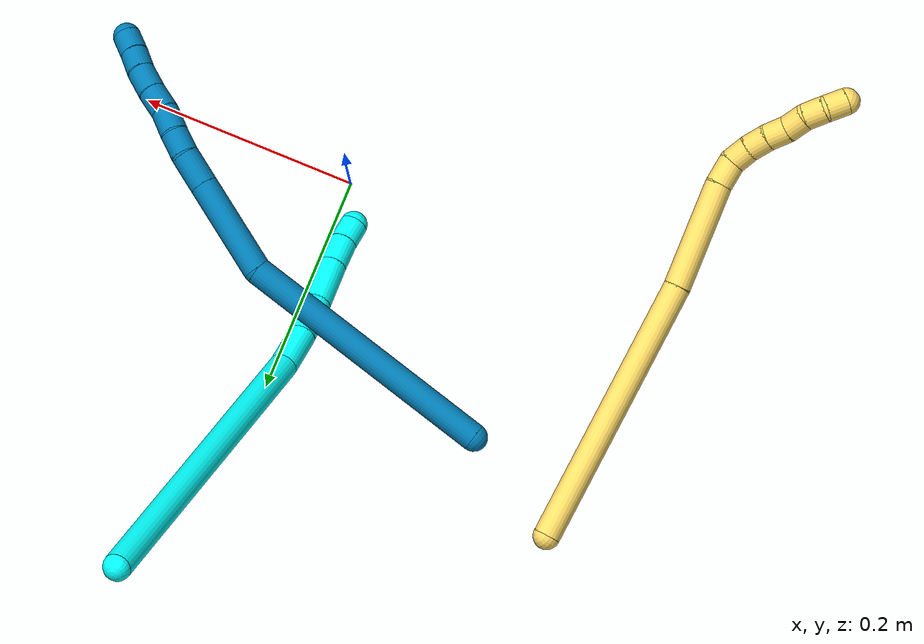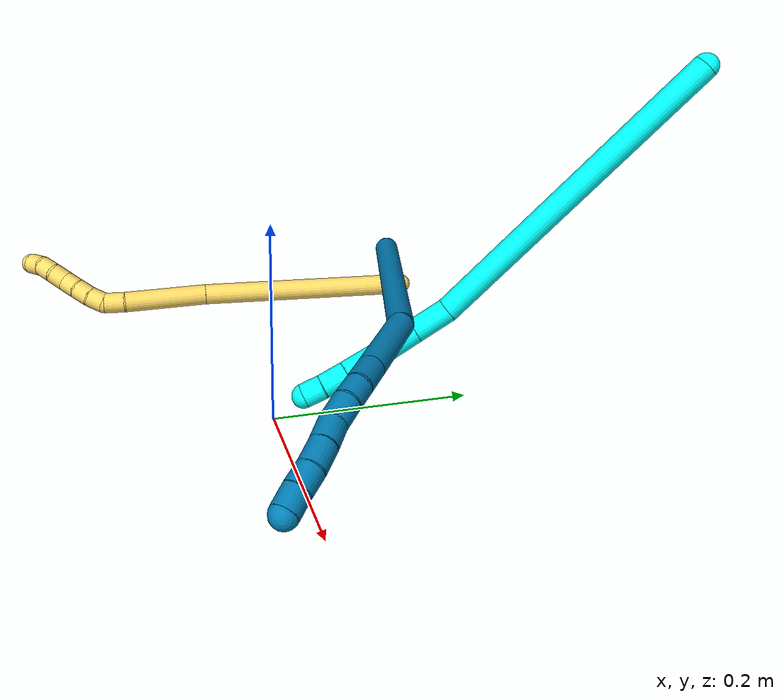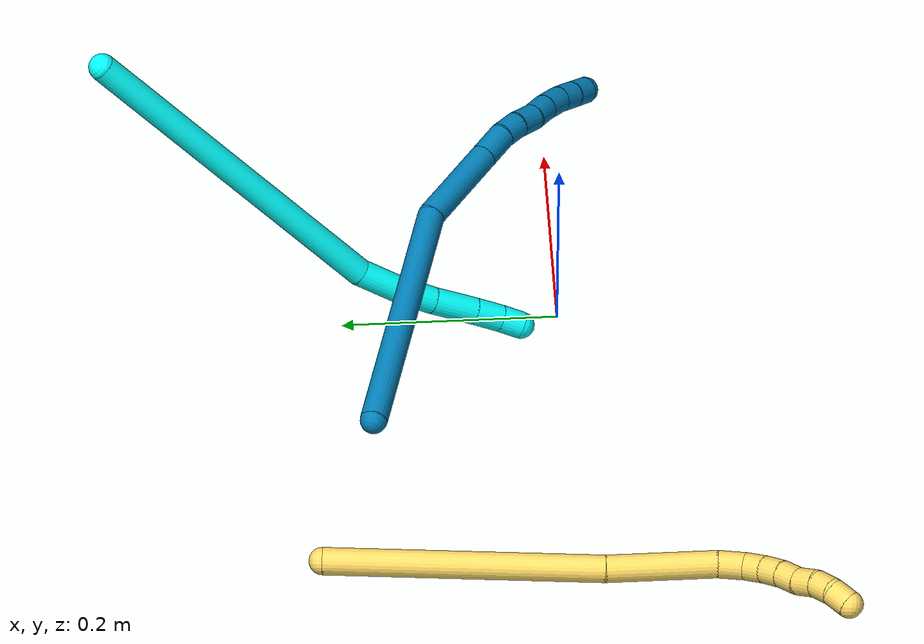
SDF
<sdf version="1.7">
 <world name="default">
  <model name="3">
   <static>0</static>
   <link name="3">
    <collision name="collision-cylinder-e_1_1_4">
     <pose>-0.015976 0.021845 -0.163456 -3.00874 -0.096577 1.25649</pose>
     <geometry><cylinder><radius>0.0125</radius><length>0.331363</length></cylinder></geometry>
     <surface>
      <friction><ode><mu>1.16</mu><mu2>1.16</mu2><slip1>0</slip1><slip2>0</slip2></ode></friction>
      <contact><ode><kp>1e+06</kp><kd>1</kd><max_vel>0</max_vel><min_depth>0.001</min_depth></ode></contact>
     </surface>
    </collision>
    <visual name="visual-cylinder-e_1_1_4">
     <pose>-0.015976 0.021845 -0.163456 -3.00874 -0.096577 1.25649</pose>
     <geometry><cylinder><radius>0.0125</radius><length>0.331363</length></cylinder></geometry>
     <material><ambient>0.003922 1 0.996078 1</ambient></material>
    </visual>
    <collision name="collision-cylinder-e_2_4_5">
     <pose>-0.03573 0.041553 -0.346114 3.0308 -0.19308 -2.10149</pose>
     <geometry><cylinder><radius>0.0125</radius><length>0.039371</length></cylinder></geometry>
     <surface>
      <friction><ode><mu>1.16</mu><mu2>1.16</mu2><slip1>0</slip1><slip2>0</slip2></ode></friction>
      <contact><ode><kp>1e+06</kp><kd>1</kd><max_vel>0</max_vel><min_depth>0.001</min_depth></ode></contact>
     </surface>
    </collision>
    <visual name="visual-cylinder-e_2_4_5">
     <pose>-0.03573 0.041553 -0.346114 3.0308 -0.19308 -2.10149</pose>
     <geometry><cylinder><radius>0.0125</radius><length>0.039371</length></cylinder></geometry>
     <material><ambient>0.003922 1 0.996078 1</ambient></material>
    </visual>
    <collision name="collision-cylinder-e_3_5_6">
     <pose>-0.042375 0.035802 -0.384014 2.9506 -0.149483 -1.32702</pose>
     <geometry><cylinder><radius>0.0125</radius><length>0.03852</length></cylinder></geometry>
     <surface>
      <friction><ode><mu>1.16</mu><mu2>1.16</mu2><slip1>0</slip1><slip2>0</slip2></ode></friction>
      <contact><ode><kp>1e+06</kp><kd>1</kd><max_vel>0</max_vel><min_depth>0.001</min_depth></ode></contact>
     </surface>
    </collision>
    <visual name="visual-cylinder-e_3_5_6">
     <pose>-0.042375 0.035802 -0.384014 2.9506 -0.149483 -1.32702</pose>
     <geometry><cylinder><radius>0.0125</radius><length>0.03852</length></cylinder></geometry>
     <material><ambient>0.003922 1 0.996078 1</ambient></material>
    </visual>
    <collision name="collision-cylinder-e_4_6_7">
     <pose>-0.048609 0.02668 -0.422986 2.87639 -0.158851 -1.07601</pose>
     <geometry><cylinder><radius>0.0125</radius><length>0.04255</length></cylinder></geometry>
     <surface>
      <friction><ode><mu>1.16</mu><mu2>1.16</mu2><slip1>0</slip1><slip2>0</slip2></ode></friction>
      <contact><ode><kp>1e+06</kp><kd>1</kd><max_vel>0</max_vel><min_depth>0.001</min_depth></ode></contact>
     </surface>
    </collision>
    <visual name="visual-cylinder-e_4_6_7">
     <pose>-0.048609 0.02668 -0.422986 2.87639 -0.158851 -1.07601</pose>
     <geometry><cylinder><radius>0.0125</radius><length>0.04255</length></cylinder></geometry>
     <material><ambient>0.003922 1 0.996078 1</ambient></material>
    </visual>
    <collision name="collision-cylinder-e_5_7_8">
     <pose>-0.054462 0.017961 -0.456064 2.89577 -0.186251 -1.29469</pose>
     <geometry><cylinder><radius>0.0125</radius><length>0.02687</length></cylinder></geometry>
     <surface>
      <friction><ode><mu>1.16</mu><mu2>1.16</mu2><slip1>0</slip1><slip2>0</slip2></ode></friction>
      <contact><ode><kp>1e+06</kp><kd>1</kd><max_vel>0</max_vel><min_depth>0.001</min_depth></ode></contact>
     </surface>
    </collision>
    <visual name="visual-cylinder-e_5_7_8">
     <pose>-0.054462 0.017961 -0.456064 2.89577 -0.186251 -1.29469</pose>
     <geometry><cylinder><radius>0.0125</radius><length>0.02687</length></cylinder></geometry>
     <material><ambient>0.003922 1 0.996078 1</ambient></material>
    </visual>
    <collision name="collision-cylinder-e_6_8_2">
     <pose>-0.059944 0.01252 -0.478858 2.92207 -0.284609 -1.83028</pose>
     <geometry><cylinder><radius>0.0125</radius><length>0.021326</length></cylinder></geometry>
     <surface>
      <friction><ode><mu>1.16</mu><mu2>1.16</mu2><slip1>0</slip1><slip2>0</slip2></ode></friction>
      <contact><ode><kp>1e+06</kp><kd>1</kd><max_vel>0</max_vel><min_depth>0.001</min_depth></ode></contact>
     </surface>
    </collision>
    <visual name="visual-cylinder-e_6_8_2">
     <pose>-0.059944 0.01252 -0.478858 2.92207 -0.284609 -1.83028</pose>
     <geometry><cylinder><radius>0.0125</radius><length>0.021326</length></cylinder></geometry>
     <material><ambient>0.003922 1 0.996078 1</ambient></material>
    </visual>
    <collision name="collision-sphere-2">
     <pose>-0.062938 0.010291 -0.488847 0 -0 0</pose>
     <geometry><sphere><radius>0.0125</radius></sphere></geometry>
     <surface>
      <friction><ode><mu>1.16</mu><mu2>1.16</mu2><slip1>0</slip1><slip2>0</slip2></ode></friction>
      <contact><ode><kp>1e+06</kp><kd>1</kd><max_vel>0</max_vel><min_depth>0.001</min_depth></ode></contact>
     </surface>
    </collision>
    <visual name="visual-sphere-2">
     <pose>-0.062938 0.010291 -0.488847 0 -0 0</pose>
     <geometry><sphere><radius>0.0125</radius></sphere></geometry>
     <material><ambient>0.003922 1 0.996078 1</ambient></material>
    </visual>
    <collision name="collision-sphere-4">
     <pose>-0.031952 0.043689 -0.326913 0 -0 0</pose>
     <geometry><sphere><radius>0.0125</radius></sphere></geometry>
     <surface>
      <friction><ode><mu>1.16</mu><mu2>1.16</mu2><slip1>0</slip1><slip2>0</slip2></ode></friction>
      <contact><ode><kp>1e+06</kp><kd>1</kd><max_vel>0</max_vel><min_depth>0.001</min_depth></ode></contact>
     </surface>
    </collision>
    <visual name="visual-sphere-4">
     <pose>-0.031952 0.043689 -0.326913 0 -0 0</pose>
     <geometry><sphere><radius>0.0125</radius></sphere></geometry>
     <material><ambient>0.003922 1 0.996078 1</ambient></material>
    </visual>
    <collision name="collision-sphere-1">
     <geometry><sphere><radius>0.0125</radius></sphere></geometry>
     <surface>
      <friction><ode><mu>1.16</mu><mu2>1.16</mu2><slip1>0</slip1><slip2>0</slip2></ode></friction>
      <contact><ode><kp>1e+06</kp><kd>1</kd><max_vel>0</max_vel><min_depth>0.001</min_depth></ode></contact>
     </surface>
    </collision>
    <visual name="visual-sphere-1">
     <geometry><sphere><radius>0.0125</radius></sphere></geometry>
     <material><ambient>0.003922 1 0.996078 1</ambient></material>
    </visual>
    <collision name="collision-sphere-8">
     <pose>-0.05695 0.014748 -0.46887 0 -0 0</pose>
     <geometry><sphere><radius>0.0125</radius></sphere></geometry>
     <surface>
      <friction><ode><mu>1.16</mu><mu2>1.16</mu2><slip1>0</slip1><slip2>0</slip2></ode></friction>
      <contact><ode><kp>1e+06</kp><kd>1</kd><max_vel>0</max_vel><min_depth>0.001</min_depth></ode></contact>
     </surface>
    </collision>
    <visual name="visual-sphere-8">
     <pose>-0.05695 0.014748 -0.46887 0 -0 0</pose>
     <geometry><sphere><radius>0.0125</radius></sphere></geometry>
     <material><ambient>0.003922 1 0.996078 1</ambient></material>
    </visual>
    <collision name="collision-sphere-5">
     <pose>-0.039507 0.039417 -0.365316 0 -0 0</pose>
     <geometry><sphere><radius>0.0125</radius></sphere></geometry>
     <surface>
      <friction><ode><mu>1.16</mu><mu2>1.16</mu2><slip1>0</slip1><slip2>0</slip2></ode></friction>
      <contact><ode><kp>1e+06</kp><kd>1</kd><max_vel>0</max_vel><min_depth>0.001</min_depth></ode></contact>
     </surface>
    </collision>
    <visual name="visual-sphere-5">
     <pose>-0.039507 0.039417 -0.365316 0 -0 0</pose>
     <geometry><sphere><radius>0.0125</radius></sphere></geometry>
     <material><ambient>0.003922 1 0.996078 1</ambient></material>
    </visual>
    <collision name="collision-sphere-6">
     <pose>-0.045244 0.032186 -0.402713 0 -0 0</pose>
     <geometry><sphere><radius>0.0125</radius></sphere></geometry>
     <surface>
      <friction><ode><mu>1.16</mu><mu2>1.16</mu2><slip1>0</slip1><slip2>0</slip2></ode></friction>
      <contact><ode><kp>1e+06</kp><kd>1</kd><max_vel>0</max_vel><min_depth>0.001</min_depth></ode></contact>
     </surface>
    </collision>
    <visual name="visual-sphere-6">
     <pose>-0.045244 0.032186 -0.402713 0 -0 0</pose>
     <geometry><sphere><radius>0.0125</radius></sphere></geometry>
     <material><ambient>0.003922 1 0.996078 1</ambient></material>
    </visual>
    <collision name="collision-sphere-7">
     <pose>-0.051974 0.021174 -0.443259 0 -0 0</pose>
     <geometry><sphere><radius>0.0125</radius></sphere></geometry>
     <surface>
      <friction><ode><mu>1.16</mu><mu2>1.16</mu2><slip1>0</slip1><slip2>0</slip2></ode></friction>
      <contact><ode><kp>1e+06</kp><kd>1</kd><max_vel>0</max_vel><min_depth>0.001</min_depth></ode></contact>
     </surface>
    </collision>
    <visual name="visual-sphere-7">
     <pose>-0.051974 0.021174 -0.443259 0 -0 0</pose>
     <geometry><sphere><radius>0.0125</radius></sphere></geometry>
     <material><ambient>0.003922 1 0.996078 1</ambient></material>
    </visual>
    <inertial>
     <pose>-0.026286 0.024277 -0.246094 0 -0 0</pose>
     <mass>0.5</mass>
     <inertia>
      <ixx>0.003794</ixx>
      <ixy>0</ixy>
      <ixz>0</ixz>
      <iyy>0.001963</iyy>
      <iyz>0</iyz>
      <izz>-0.000137</izz>
     </inertia>
    </inertial>
   </link>
   <pose>0.03044 0.406805 0.331287 -0.714531 0.409791 0.457594</pose>
  </model>
  <model name="5">
   <static>0</static>
   <link name="5">
    <collision name="collision-cylinder-e_1_1_4">
     <pose>0.056004 -0.114027 0.000371 1.56754 0.456536 0.455102</pose>
     <geometry><cylinder><radius>0.0125</radius><length>0.254076</length></cylinder></geometry>
     <surface>
      <friction><ode><mu>1.16</mu><mu2>1.16</mu2><slip1>0</slip1><slip2>0</slip2></ode></friction>
      <contact><ode><kp>1e+06</kp><kd>1</kd><max_vel>0</max_vel><min_depth>0.001</min_depth></ode></contact>
     </surface>
    </collision>
    <visual name="visual-cylinder-e_1_1_4">
     <pose>0.056004 -0.114027 0.000371 1.56754 0.456536 0.455102</pose>
     <geometry><cylinder><radius>0.0125</radius><length>0.254076</length></cylinder></geometry>
     <material><ambient>1 0.858824 0.4 1</ambient></material>
    </visual>
    <collision name="collision-cylinder-e_2_4_5">
     <pose>0.1368 -0.271661 0.004647 1.4815 0.51525 0.472872</pose>
     <geometry><cylinder><radius>0.0125</radius><length>0.10063</length></cylinder></geometry>
     <surface>
      <friction><ode><mu>1.16</mu><mu2>1.16</mu2><slip1>0</slip1><slip2>0</slip2></ode></friction>
      <contact><ode><kp>1e+06</kp><kd>1</kd><max_vel>0</max_vel><min_depth>0.001</min_depth></ode></contact>
     </surface>
    </collision>
    <visual name="visual-cylinder-e_2_4_5">
     <pose>0.1368 -0.271661 0.004647 1.4815 0.51525 0.472872</pose>
     <geometry><cylinder><radius>0.0125</radius><length>0.10063</length></cylinder></geometry>
     <material><ambient>1 0.858824 0.4 1</ambient></material>
    </visual>
    <collision name="collision-cylinder-e_3_5_6">
     <pose>0.166885 -0.326512 0.007951 1.62414 0.439433 0.462693</pose>
     <geometry><cylinder><radius>0.0125</radius><length>0.024881</length></cylinder></geometry>
     <surface>
      <friction><ode><mu>1.16</mu><mu2>1.16</mu2><slip1>0</slip1><slip2>0</slip2></ode></friction>
      <contact><ode><kp>1e+06</kp><kd>1</kd><max_vel>0</max_vel><min_depth>0.001</min_depth></ode></contact>
     </surface>
    </collision>
    <visual name="visual-cylinder-e_3_5_6">
     <pose>0.166885 -0.326512 0.007951 1.62414 0.439433 0.462693</pose>
     <geometry><cylinder><radius>0.0125</radius><length>0.024881</length></cylinder></geometry>
     <material><ambient>1 0.858824 0.4 1</ambient></material>
    </visual>
    <collision name="collision-cylinder-e_4_6_7">
     <pose>0.171589 -0.347737 0.005772 1.7277 -0.058162 -0.06808</pose>
     <geometry><cylinder><radius>0.0125</radius><length>0.020248</length></cylinder></geometry>
     <surface>
      <friction><ode><mu>1.16</mu><mu2>1.16</mu2><slip1>0</slip1><slip2>0</slip2></ode></friction>
      <contact><ode><kp>1e+06</kp><kd>1</kd><max_vel>0</max_vel><min_depth>0.001</min_depth></ode></contact>
     </surface>
    </collision>
    <visual name="visual-cylinder-e_4_6_7">
     <pose>0.171589 -0.347737 0.005772 1.7277 -0.058162 -0.06808</pose>
     <geometry><cylinder><radius>0.0125</radius><length>0.020248</length></cylinder></geometry>
     <material><ambient>1 0.858824 0.4 1</ambient></material>
    </visual>
    <collision name="collision-cylinder-e_5_7_8">
     <pose>0.169094 -0.367319 0.001956 1.79972 -0.191039 -0.240241</pose>
     <geometry><cylinder><radius>0.0125</radius><length>0.020079</length></cylinder></geometry>
     <surface>
      <friction><ode><mu>1.16</mu><mu2>1.16</mu2><slip1>0</slip1><slip2>0</slip2></ode></friction>
      <contact><ode><kp>1e+06</kp><kd>1</kd><max_vel>0</max_vel><min_depth>0.001</min_depth></ode></contact>
     </surface>
    </collision>
    <visual name="visual-cylinder-e_5_7_8">
     <pose>0.169094 -0.367319 0.001956 1.79972 -0.191039 -0.240241</pose>
     <geometry><cylinder><radius>0.0125</radius><length>0.020079</length></cylinder></geometry>
     <material><ambient>1 0.858824 0.4 1</ambient></material>
    </visual>
    <collision name="collision-cylinder-e_6_8_9">
     <pose>0.165018 -0.386049 -0.003809 1.93955 -0.218178 -0.316804</pose>
     <geometry><cylinder><radius>0.0125</radius><length>0.020052</length></cylinder></geometry>
     <surface>
      <friction><ode><mu>1.16</mu><mu2>1.16</mu2><slip1>0</slip1><slip2>0</slip2></ode></friction>
      <contact><ode><kp>1e+06</kp><kd>1</kd><max_vel>0</max_vel><min_depth>0.001</min_depth></ode></contact>
     </surface>
    </collision>
    <visual name="visual-cylinder-e_6_8_9">
     <pose>0.165018 -0.386049 -0.003809 1.93955 -0.218178 -0.316804</pose>
     <geometry><cylinder><radius>0.0125</radius><length>0.020052</length></cylinder></geometry>
     <material><ambient>1 0.858824 0.4 1</ambient></material>
    </visual>
    <collision name="collision-cylinder-e_7_9_10">
     <pose>0.160719 -0.404883 -0.008541 1.6942 -0.214309 -0.242273</pose>
     <geometry><cylinder><radius>0.0125</radius><length>0.020015</length></cylinder></geometry>
     <surface>
      <friction><ode><mu>1.16</mu><mu2>1.16</mu2><slip1>0</slip1><slip2>0</slip2></ode></friction>
      <contact><ode><kp>1e+06</kp><kd>1</kd><max_vel>0</max_vel><min_depth>0.001</min_depth></ode></contact>
     </surface>
    </collision>
    <visual name="visual-cylinder-e_7_9_10">
     <pose>0.160719 -0.404883 -0.008541 1.6942 -0.214309 -0.242273</pose>
     <geometry><cylinder><radius>0.0125</radius><length>0.020015</length></cylinder></geometry>
     <material><ambient>1 0.858824 0.4 1</ambient></material>
    </visual>
    <collision name="collision-cylinder-e_8_10_11">
     <pose>0.156414 -0.42357 -0.013562 1.97264 -0.219499 -0.330087</pose>
     <geometry><cylinder><radius>0.0125</radius><length>0.020001</length></cylinder></geometry>
     <surface>
      <friction><ode><mu>1.16</mu><mu2>1.16</mu2><slip1>0</slip1><slip2>0</slip2></ode></friction>
      <contact><ode><kp>1e+06</kp><kd>1</kd><max_vel>0</max_vel><min_depth>0.001</min_depth></ode></contact>
     </surface>
    </collision>
    <visual name="visual-cylinder-e_8_10_11">
     <pose>0.156414 -0.42357 -0.013562 1.97264 -0.219499 -0.330087</pose>
     <geometry><cylinder><radius>0.0125</radius><length>0.020001</length></cylinder></geometry>
     <material><ambient>1 0.858824 0.4 1</ambient></material>
    </visual>
    <collision name="collision-cylinder-e_9_11_2">
     <pose>0.154413 -0.440785 -0.023072 2.17578 0.0177 0.033757</pose>
     <geometry><cylinder><radius>0.0125</radius><length>0.02002</length></cylinder></geometry>
     <surface>
      <friction><ode><mu>1.16</mu><mu2>1.16</mu2><slip1>0</slip1><slip2>0</slip2></ode></friction>
      <contact><ode><kp>1e+06</kp><kd>1</kd><max_vel>0</max_vel><min_depth>0.001</min_depth></ode></contact>
     </surface>
    </collision>
    <visual name="visual-cylinder-e_9_11_2">
     <pose>0.154413 -0.440785 -0.023072 2.17578 0.0177 0.033757</pose>
     <geometry><cylinder><radius>0.0125</radius><length>0.02002</length></cylinder></geometry>
     <material><ambient>1 0.858824 0.4 1</ambient></material>
    </visual>
    <collision name="collision-sphere-2">
     <pose>0.15459 -0.449017 -0.028764 0 -0 0</pose>
     <geometry><sphere><radius>0.0125</radius></sphere></geometry>
     <surface>
      <friction><ode><mu>1.16</mu><mu2>1.16</mu2><slip1>0</slip1><slip2>0</slip2></ode></friction>
      <contact><ode><kp>1e+06</kp><kd>1</kd><max_vel>0</max_vel><min_depth>0.001</min_depth></ode></contact>
     </surface>
    </collision>
    <visual name="visual-sphere-2">
     <pose>0.15459 -0.449017 -0.028764 0 -0 0</pose>
     <geometry><sphere><radius>0.0125</radius></sphere></geometry>
     <material><ambient>1 0.858824 0.4 1</ambient></material>
    </visual>
    <collision name="collision-sphere-11">
     <pose>0.154236 -0.432553 -0.01738 0 -0 0</pose>
     <geometry><sphere><radius>0.0125</radius></sphere></geometry>
     <surface>
      <friction><ode><mu>1.16</mu><mu2>1.16</mu2><slip1>0</slip1><slip2>0</slip2></ode></friction>
      <contact><ode><kp>1e+06</kp><kd>1</kd><max_vel>0</max_vel><min_depth>0.001</min_depth></ode></contact>
     </surface>
    </collision>
    <visual name="visual-sphere-11">
     <pose>0.154236 -0.432553 -0.01738 0 -0 0</pose>
     <geometry><sphere><radius>0.0125</radius></sphere></geometry>
     <material><ambient>1 0.858824 0.4 1</ambient></material>
    </visual>
    <collision name="collision-sphere-10">
     <pose>0.158591 -0.414587 -0.009745 0 -0 0</pose>
     <geometry><sphere><radius>0.0125</radius></sphere></geometry>
     <surface>
      <friction><ode><mu>1.16</mu><mu2>1.16</mu2><slip1>0</slip1><slip2>0</slip2></ode></friction>
      <contact><ode><kp>1e+06</kp><kd>1</kd><max_vel>0</max_vel><min_depth>0.001</min_depth></ode></contact>
     </surface>
    </collision>
    <visual name="visual-sphere-10">
     <pose>0.158591 -0.414587 -0.009745 0 -0 0</pose>
     <geometry><sphere><radius>0.0125</radius></sphere></geometry>
     <material><ambient>1 0.858824 0.4 1</ambient></material>
    </visual>
    <collision name="collision-sphere-9">
     <pose>0.162848 -0.395179 -0.007337 0 -0 0</pose>
     <geometry><sphere><radius>0.0125</radius></sphere></geometry>
     <surface>
      <friction><ode><mu>1.16</mu><mu2>1.16</mu2><slip1>0</slip1><slip2>0</slip2></ode></friction>
      <contact><ode><kp>1e+06</kp><kd>1</kd><max_vel>0</max_vel><min_depth>0.001</min_depth></ode></contact>
     </surface>
    </collision>
    <visual name="visual-sphere-9">
     <pose>0.162848 -0.395179 -0.007337 0 -0 0</pose>
     <geometry><sphere><radius>0.0125</radius></sphere></geometry>
     <material><ambient>1 0.858824 0.4 1</ambient></material>
    </visual>
    <collision name="collision-sphere-4">
     <pose>0.112007 -0.228053 0.000743 0 -0 0</pose>
     <geometry><sphere><radius>0.0125</radius></sphere></geometry>
     <surface>
      <friction><ode><mu>1.16</mu><mu2>1.16</mu2><slip1>0</slip1><slip2>0</slip2></ode></friction>
      <contact><ode><kp>1e+06</kp><kd>1</kd><max_vel>0</max_vel><min_depth>0.001</min_depth></ode></contact>
     </surface>
    </collision>
    <visual name="visual-sphere-4">
     <pose>0.112007 -0.228053 0.000743 0 -0 0</pose>
     <geometry><sphere><radius>0.0125</radius></sphere></geometry>
     <material><ambient>1 0.858824 0.4 1</ambient></material>
    </visual>
    <collision name="collision-sphere-1">
     <geometry><sphere><radius>0.0125</radius></sphere></geometry>
     <surface>
      <friction><ode><mu>1.16</mu><mu2>1.16</mu2><slip1>0</slip1><slip2>0</slip2></ode></friction>
      <contact><ode><kp>1e+06</kp><kd>1</kd><max_vel>0</max_vel><min_depth>0.001</min_depth></ode></contact>
     </surface>
    </collision>
    <visual name="visual-sphere-1">
     <geometry><sphere><radius>0.0125</radius></sphere></geometry>
     <material><ambient>1 0.858824 0.4 1</ambient></material>
    </visual>
    <collision name="collision-sphere-8">
     <pose>0.167188 -0.376919 -0.000281 0 -0 0</pose>
     <geometry><sphere><radius>0.0125</radius></sphere></geometry>
     <surface>
      <friction><ode><mu>1.16</mu><mu2>1.16</mu2><slip1>0</slip1><slip2>0</slip2></ode></friction>
      <contact><ode><kp>1e+06</kp><kd>1</kd><max_vel>0</max_vel><min_depth>0.001</min_depth></ode></contact>
     </surface>
    </collision>
    <visual name="visual-sphere-8">
     <pose>0.167188 -0.376919 -0.000281 0 -0 0</pose>
     <geometry><sphere><radius>0.0125</radius></sphere></geometry>
     <material><ambient>1 0.858824 0.4 1</ambient></material>
    </visual>
    <collision name="collision-sphere-5">
     <pose>0.161592 -0.315269 0.008552 0 -0 0</pose>
     <geometry><sphere><radius>0.0125</radius></sphere></geometry>
     <surface>
      <friction><ode><mu>1.16</mu><mu2>1.16</mu2><slip1>0</slip1><slip2>0</slip2></ode></friction>
      <contact><ode><kp>1e+06</kp><kd>1</kd><max_vel>0</max_vel><min_depth>0.001</min_depth></ode></contact>
     </surface>
    </collision>
    <visual name="visual-sphere-5">
     <pose>0.161592 -0.315269 0.008552 0 -0 0</pose>
     <geometry><sphere><radius>0.0125</radius></sphere></geometry>
     <material><ambient>1 0.858824 0.4 1</ambient></material>
    </visual>
    <collision name="collision-sphere-6">
     <pose>0.172177 -0.337754 0.007351 0 -0 0</pose>
     <geometry><sphere><radius>0.0125</radius></sphere></geometry>
     <surface>
      <friction><ode><mu>1.16</mu><mu2>1.16</mu2><slip1>0</slip1><slip2>0</slip2></ode></friction>
      <contact><ode><kp>1e+06</kp><kd>1</kd><max_vel>0</max_vel><min_depth>0.001</min_depth></ode></contact>
     </surface>
    </collision>
    <visual name="visual-sphere-6">
     <pose>0.172177 -0.337754 0.007351 0 -0 0</pose>
     <geometry><sphere><radius>0.0125</radius></sphere></geometry>
     <material><ambient>1 0.858824 0.4 1</ambient></material>
    </visual>
    <collision name="collision-sphere-7">
     <pose>0.171 -0.35772 0.004192 0 -0 0</pose>
     <geometry><sphere><radius>0.0125</radius></sphere></geometry>
     <surface>
      <friction><ode><mu>1.16</mu><mu2>1.16</mu2><slip1>0</slip1><slip2>0</slip2></ode></friction>
      <contact><ode><kp>1e+06</kp><kd>1</kd><max_vel>0</max_vel><min_depth>0.001</min_depth></ode></contact>
     </surface>
    </collision>
    <visual name="visual-sphere-7">
     <pose>0.171 -0.35772 0.004192 0 -0 0</pose>
     <geometry><sphere><radius>0.0125</radius></sphere></geometry>
     <material><ambient>1 0.858824 0.4 1</ambient></material>
    </visual>
    <inertial>
     <pose>0.103525 -0.223979 -0.000129 0 -0 0</pose>
     <mass>0.5</mass>
     <inertia>
      <ixx>0.001779</ixx>
      <ixy>0</ixy>
      <ixz>0</ixz>
      <iyy>0.000838</iyy>
      <iyz>0</iyz>
      <izz>0.00067</izz>
     </inertia>
    </inertial>
   </link>
   <pose>-0.286571 0.228829 0.011894 -0.578 0.836507 -0.81425</pose>
  </model>
  <model name="9">
   <static>0</static>
   <link name="9">
    <collision name="collision-cylinder-e_1_1_4">
     <pose>-0.001196 -0.026937 -0.118054 2.91726 -0.00988 -0.087655</pose>
     <geometry><cylinder><radius>0.0125</radius><length>0.242188</length></cylinder></geometry>
     <surface>
      <friction><ode><mu>1.16</mu><mu2>1.16</mu2><slip1>0</slip1><slip2>0</slip2></ode></friction>
      <contact><ode><kp>1e+06</kp><kd>1</kd><max_vel>0</max_vel><min_depth>0.001</min_depth></ode></contact>
     </surface>
    </collision>
    <visual name="visual-cylinder-e_1_1_4">
     <pose>-0.001196 -0.026937 -0.118054 2.91726 -0.00988 -0.087655</pose>
     <geometry><cylinder><radius>0.0125</radius><length>0.242188</length></cylinder></geometry>
     <material><ambient>0 0.490196 0.709804 1</ambient></material>
    </visual>
    <collision name="collision-cylinder-e_2_4_5">
     <pose>0.013076 -0.061551 -0.277811 2.95956 0.349801 2.18806</pose>
     <geometry><cylinder><radius>0.0125</radius><length>0.090274</length></cylinder></geometry>
     <surface>
      <friction><ode><mu>1.16</mu><mu2>1.16</mu2><slip1>0</slip1><slip2>0</slip2></ode></friction>
      <contact><ode><kp>1e+06</kp><kd>1</kd><max_vel>0</max_vel><min_depth>0.001</min_depth></ode></contact>
     </surface>
    </collision>
    <visual name="visual-cylinder-e_2_4_5">
     <pose>0.013076 -0.061551 -0.277811 2.95956 0.349801 2.18806</pose>
     <geometry><cylinder><radius>0.0125</radius><length>0.090274</length></cylinder></geometry>
     <material><ambient>0 0.490196 0.709804 1</ambient></material>
    </visual>
    <collision name="collision-cylinder-e_3_5_6">
     <pose>0.034022 -0.071824 -0.334335 2.96814 0.349101 2.22547</pose>
     <geometry><cylinder><radius>0.0125</radius><length>0.032026</length></cylinder></geometry>
     <surface>
      <friction><ode><mu>1.16</mu><mu2>1.16</mu2><slip1>0</slip1><slip2>0</slip2></ode></friction>
      <contact><ode><kp>1e+06</kp><kd>1</kd><max_vel>0</max_vel><min_depth>0.001</min_depth></ode></contact>
     </surface>
    </collision>
    <visual name="visual-cylinder-e_3_5_6">
     <pose>0.034022 -0.071824 -0.334335 2.96814 0.349101 2.22547</pose>
     <geometry><cylinder><radius>0.0125</radius><length>0.032026</length></cylinder></geometry>
     <material><ambient>0 0.490196 0.709804 1</ambient></material>
    </visual>
    <collision name="collision-cylinder-e_4_6_7">
     <pose>0.044814 -0.077443 -0.35864 2.8331 0.490419 2.02969</pose>
     <geometry><cylinder><radius>0.0125</radius><length>0.022567</length></cylinder></geometry>
     <surface>
      <friction><ode><mu>1.16</mu><mu2>1.16</mu2><slip1>0</slip1><slip2>0</slip2></ode></friction>
      <contact><ode><kp>1e+06</kp><kd>1</kd><max_vel>0</max_vel><min_depth>0.001</min_depth></ode></contact>
     </surface>
    </collision>
    <visual name="visual-cylinder-e_4_6_7">
     <pose>0.044814 -0.077443 -0.35864 2.8331 0.490419 2.02969</pose>
     <geometry><cylinder><radius>0.0125</radius><length>0.022567</length></cylinder></geometry>
     <material><ambient>0 0.490196 0.709804 1</ambient></material>
    </visual>
    <collision name="collision-cylinder-e_5_7_8">
     <pose>0.056678 -0.08496 -0.377158 2.67995 0.575687 1.79972</pose>
     <geometry><cylinder><radius>0.0125</radius><length>0.024059</length></cylinder></geometry>
     <surface>
      <friction><ode><mu>1.16</mu><mu2>1.16</mu2><slip1>0</slip1><slip2>0</slip2></ode></friction>
      <contact><ode><kp>1e+06</kp><kd>1</kd><max_vel>0</max_vel><min_depth>0.001</min_depth></ode></contact>
     </surface>
    </collision>
    <visual name="visual-cylinder-e_5_7_8">
     <pose>0.056678 -0.08496 -0.377158 2.67995 0.575687 1.79972</pose>
     <geometry><cylinder><radius>0.0125</radius><length>0.024059</length></cylinder></geometry>
     <material><ambient>0 0.490196 0.709804 1</ambient></material>
    </visual>
    <collision name="collision-cylinder-e_6_8_9">
     <pose>0.06785 -0.094317 -0.395695 2.66863 0.408729 1.42057</pose>
     <geometry><cylinder><radius>0.0125</radius><length>0.023266</length></cylinder></geometry>
     <surface>
      <friction><ode><mu>1.16</mu><mu2>1.16</mu2><slip1>0</slip1><slip2>0</slip2></ode></friction>
      <contact><ode><kp>1e+06</kp><kd>1</kd><max_vel>0</max_vel><min_depth>0.001</min_depth></ode></contact>
     </surface>
    </collision>
    <visual name="visual-cylinder-e_6_8_9">
     <pose>0.06785 -0.094317 -0.395695 2.66863 0.408729 1.42057</pose>
     <geometry><cylinder><radius>0.0125</radius><length>0.023266</length></cylinder></geometry>
     <material><ambient>0 0.490196 0.709804 1</ambient></material>
    </visual>
    <collision name="collision-cylinder-e_7_9_10">
     <pose>0.078283 -0.104351 -0.414532 2.63569 0.498521 1.55546</pose>
     <geometry><cylinder><radius>0.0125</radius><length>0.024298</length></cylinder></geometry>
     <surface>
      <friction><ode><mu>1.16</mu><mu2>1.16</mu2><slip1>0</slip1><slip2>0</slip2></ode></friction>
      <contact><ode><kp>1e+06</kp><kd>1</kd><max_vel>0</max_vel><min_depth>0.001</min_depth></ode></contact>
     </surface>
    </collision>
    <visual name="visual-cylinder-e_7_9_10">
     <pose>0.078283 -0.104351 -0.414532 2.63569 0.498521 1.55546</pose>
     <geometry><cylinder><radius>0.0125</radius><length>0.024298</length></cylinder></geometry>
     <material><ambient>0 0.490196 0.709804 1</ambient></material>
    </visual>
    <collision name="collision-cylinder-e_8_10_11">
     <pose>0.090095 -0.113803 -0.430956 2.59838 0.627196 1.7225</pose>
     <geometry><cylinder><radius>0.0125</radius><length>0.020459</length></cylinder></geometry>
     <surface>
      <friction><ode><mu>1.16</mu><mu2>1.16</mu2><slip1>0</slip1><slip2>0</slip2></ode></friction>
      <contact><ode><kp>1e+06</kp><kd>1</kd><max_vel>0</max_vel><min_depth>0.001</min_depth></ode></contact>
     </surface>
    </collision>
    <visual name="visual-cylinder-e_8_10_11">
     <pose>0.090095 -0.113803 -0.430956 2.59838 0.627196 1.7225</pose>
     <geometry><cylinder><radius>0.0125</radius><length>0.020459</length></cylinder></geometry>
     <material><ambient>0 0.490196 0.709804 1</ambient></material>
    </visual>
    <collision name="collision-cylinder-e_9_11_2">
     <pose>0.101825 -0.123035 -0.445224 2.53777 0.581137 1.53019</pose>
     <geometry><cylinder><radius>0.0125</radius><length>0.020862</length></cylinder></geometry>
     <surface>
      <friction><ode><mu>1.16</mu><mu2>1.16</mu2><slip1>0</slip1><slip2>0</slip2></ode></friction>
      <contact><ode><kp>1e+06</kp><kd>1</kd><max_vel>0</max_vel><min_depth>0.001</min_depth></ode></contact>
     </surface>
    </collision>
    <visual name="visual-cylinder-e_9_11_2">
     <pose>0.101825 -0.123035 -0.445224 2.53777 0.581137 1.53019</pose>
     <geometry><cylinder><radius>0.0125</radius><length>0.020862</length></cylinder></geometry>
     <material><ambient>0 0.490196 0.709804 1</ambient></material>
    </visual>
    <collision name="collision-sphere-2">
     <pose>0.107551 -0.127985 -0.452401 0 -0 0</pose>
     <geometry><sphere><radius>0.0125</radius></sphere></geometry>
     <surface>
      <friction><ode><mu>1.16</mu><mu2>1.16</mu2><slip1>0</slip1><slip2>0</slip2></ode></friction>
      <contact><ode><kp>1e+06</kp><kd>1</kd><max_vel>0</max_vel><min_depth>0.001</min_depth></ode></contact>
     </surface>
    </collision>
    <visual name="visual-sphere-2">
     <pose>0.107551 -0.127985 -0.452401 0 -0 0</pose>
     <geometry><sphere><radius>0.0125</radius></sphere></geometry>
     <material><ambient>0 0.490196 0.709804 1</ambient></material>
    </visual>
    <collision name="collision-sphere-11">
     <pose>0.096099 -0.118084 -0.438047 0 -0 0</pose>
     <geometry><sphere><radius>0.0125</radius></sphere></geometry>
     <surface>
      <friction><ode><mu>1.16</mu><mu2>1.16</mu2><slip1>0</slip1><slip2>0</slip2></ode></friction>
      <contact><ode><kp>1e+06</kp><kd>1</kd><max_vel>0</max_vel><min_depth>0.001</min_depth></ode></contact>
     </surface>
    </collision>
    <visual name="visual-sphere-11">
     <pose>0.096099 -0.118084 -0.438047 0 -0 0</pose>
     <geometry><sphere><radius>0.0125</radius></sphere></geometry>
     <material><ambient>0 0.490196 0.709804 1</ambient></material>
    </visual>
    <collision name="collision-sphere-10">
     <pose>0.084091 -0.109522 -0.423866 0 -0 0</pose>
     <geometry><sphere><radius>0.0125</radius></sphere></geometry>
     <surface>
      <friction><ode><mu>1.16</mu><mu2>1.16</mu2><slip1>0</slip1><slip2>0</slip2></ode></friction>
      <contact><ode><kp>1e+06</kp><kd>1</kd><max_vel>0</max_vel><min_depth>0.001</min_depth></ode></contact>
     </surface>
    </collision>
    <visual name="visual-sphere-10">
     <pose>0.084091 -0.109522 -0.423866 0 -0 0</pose>
     <geometry><sphere><radius>0.0125</radius></sphere></geometry>
     <material><ambient>0 0.490196 0.709804 1</ambient></material>
    </visual>
    <collision name="collision-sphere-9">
     <pose>0.072474 -0.09918 -0.405198 0 -0 0</pose>
     <geometry><sphere><radius>0.0125</radius></sphere></geometry>
     <surface>
      <friction><ode><mu>1.16</mu><mu2>1.16</mu2><slip1>0</slip1><slip2>0</slip2></ode></friction>
      <contact><ode><kp>1e+06</kp><kd>1</kd><max_vel>0</max_vel><min_depth>0.001</min_depth></ode></contact>
     </surface>
    </collision>
    <visual name="visual-sphere-9">
     <pose>0.072474 -0.09918 -0.405198 0 -0 0</pose>
     <geometry><sphere><radius>0.0125</radius></sphere></geometry>
     <material><ambient>0 0.490196 0.709804 1</ambient></material>
    </visual>
    <collision name="collision-sphere-4">
     <pose>-0.002393 -0.053875 -0.236108 0 -0 0</pose>
     <geometry><sphere><radius>0.0125</radius></sphere></geometry>
     <surface>
      <friction><ode><mu>1.16</mu><mu2>1.16</mu2><slip1>0</slip1><slip2>0</slip2></ode></friction>
      <contact><ode><kp>1e+06</kp><kd>1</kd><max_vel>0</max_vel><min_depth>0.001</min_depth></ode></contact>
     </surface>
    </collision>
    <visual name="visual-sphere-4">
     <pose>-0.002393 -0.053875 -0.236108 0 -0 0</pose>
     <geometry><sphere><radius>0.0125</radius></sphere></geometry>
     <material><ambient>0 0.490196 0.709804 1</ambient></material>
    </visual>
    <collision name="collision-sphere-1">
     <geometry><sphere><radius>0.0125</radius></sphere></geometry>
     <surface>
      <friction><ode><mu>1.16</mu><mu2>1.16</mu2><slip1>0</slip1><slip2>0</slip2></ode></friction>
      <contact><ode><kp>1e+06</kp><kd>1</kd><max_vel>0</max_vel><min_depth>0.001</min_depth></ode></contact>
     </surface>
    </collision>
    <visual name="visual-sphere-1">
     <geometry><sphere><radius>0.0125</radius></sphere></geometry>
     <material><ambient>0 0.490196 0.709804 1</ambient></material>
    </visual>
    <collision name="collision-sphere-8">
     <pose>0.063227 -0.089455 -0.386192 0 -0 0</pose>
     <geometry><sphere><radius>0.0125</radius></sphere></geometry>
     <surface>
      <friction><ode><mu>1.16</mu><mu2>1.16</mu2><slip1>0</slip1><slip2>0</slip2></ode></friction>
      <contact><ode><kp>1e+06</kp><kd>1</kd><max_vel>0</max_vel><min_depth>0.001</min_depth></ode></contact>
     </surface>
    </collision>
    <visual name="visual-sphere-8">
     <pose>0.063227 -0.089455 -0.386192 0 -0 0</pose>
     <geometry><sphere><radius>0.0125</radius></sphere></geometry>
     <material><ambient>0 0.490196 0.709804 1</ambient></material>
    </visual>
    <collision name="collision-sphere-5">
     <pose>0.028545 -0.069227 -0.319513 0 -0 0</pose>
     <geometry><sphere><radius>0.0125</radius></sphere></geometry>
     <surface>
      <friction><ode><mu>1.16</mu><mu2>1.16</mu2><slip1>0</slip1><slip2>0</slip2></ode></friction>
      <contact><ode><kp>1e+06</kp><kd>1</kd><max_vel>0</max_vel><min_depth>0.001</min_depth></ode></contact>
     </surface>
    </collision>
    <visual name="visual-sphere-5">
     <pose>0.028545 -0.069227 -0.319513 0 -0 0</pose>
     <geometry><sphere><radius>0.0125</radius></sphere></geometry>
     <material><ambient>0 0.490196 0.709804 1</ambient></material>
    </visual>
    <collision name="collision-sphere-6">
     <pose>0.0395 -0.074421 -0.349156 0 -0 0</pose>
     <geometry><sphere><radius>0.0125</radius></sphere></geometry>
     <surface>
      <friction><ode><mu>1.16</mu><mu2>1.16</mu2><slip1>0</slip1><slip2>0</slip2></ode></friction>
      <contact><ode><kp>1e+06</kp><kd>1</kd><max_vel>0</max_vel><min_depth>0.001</min_depth></ode></contact>
     </surface>
    </collision>
    <visual name="visual-sphere-6">
     <pose>0.0395 -0.074421 -0.349156 0 -0 0</pose>
     <geometry><sphere><radius>0.0125</radius></sphere></geometry>
     <material><ambient>0 0.490196 0.709804 1</ambient></material>
    </visual>
    <collision name="collision-sphere-7">
     <pose>0.050129 -0.080466 -0.368124 0 -0 0</pose>
     <geometry><sphere><radius>0.0125</radius></sphere></geometry>
     <surface>
      <friction><ode><mu>1.16</mu><mu2>1.16</mu2><slip1>0</slip1><slip2>0</slip2></ode></friction>
      <contact><ode><kp>1e+06</kp><kd>1</kd><max_vel>0</max_vel><min_depth>0.001</min_depth></ode></contact>
     </surface>
    </collision>
    <visual name="visual-sphere-7">
     <pose>0.050129 -0.080466 -0.368124 0 -0 0</pose>
     <geometry><sphere><radius>0.0125</radius></sphere></geometry>
     <material><ambient>0 0.490196 0.709804 1</ambient></material>
    </visual>
    <inertial>
     <pose>0.023607 -0.055595 -0.237859 0 -0 0</pose>
     <mass>0.5</mass>
     <inertia>
      <ixx>0.001116</ixx>
      <ixy>0</ixy>
      <ixz>0</ixz>
      <iyy>-0.001165</iyy>
      <iyz>0</iyz>
      <izz>0.000229</izz>
     </inertia>
    </inertial>
   </link>
   <pose>-0.194864 0.177696 0.096167 1.83184 0.32753 -1.83268</pose>
  </model>
 </world>
</sdf>
